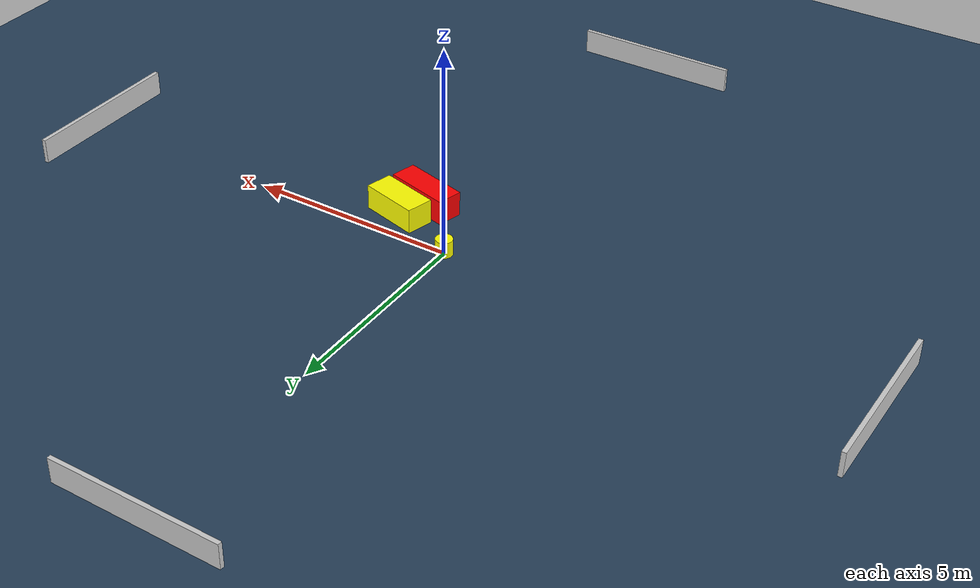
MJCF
<?xml version="1.0" ?>
<mujoco model="generated_environment">
  <option timestep="0.01" integrator="RK4" cone="elliptic"/>
  <default>
    <geom density="1"/>
  </default>
  <asset>
    <texture builtin="gradient" height="3072" name="skybox" rgb1="0.3 0.5 0.7" rgb2="0 0 0" type="skybox" width="512"/>
    <texture builtin="checker" height="300" name="groundplane" rgb1="0.2 0.3 0.4" rgb2="0.1 0.2 0.3" type="2d" width="300"/>
    <material name="groundplane" reflectance="0.2" texrepeat="5 5" texture="groundplane"/>
  </asset>
  <worldbody>
    <light dir="0 0 -1" directional="true" pos="0 0 1.5"/>
    <geom condim="3" friction="0.5 0.005 0.001" material="groundplane" name="floor" pos="0 0 0" size="0 0 0.05" type="plane"/>
    <body name="walls">
      <geom name="wall_1" condim="4" pos="-10.0 0.0 0.3" rgba="0.800000011920929 0.800000011920929 0.800000011920929 1.0" size="0.05 2.0 0.3" type="box"/>
      <geom name="wall_2" condim="4" pos="10.0 0.0 0.3" rgba="0.800000011920929 0.800000011920929 0.800000011920929 1.0" size="0.05 2.0 0.3" type="box"/>
      <geom name="wall_3" condim="4" pos="0.0 -10.0 0.3" rgba="0.800000011920929 0.800000011920929 0.800000011920929 1.0" size="2.0 0.05 0.3" type="box"/>
      <geom name="wall_4" condim="4" pos="0.0 10.0 0.3" rgba="0.800000011920929 0.800000011920929 0.800000011920929 1.0" size="2.0 0.05 0.3" type="box"/>
    </body>
    <body name="robot">
      <joint name="joint_x" type="slide" pos="0 0 0" axis="1 0 0"/>
      <joint name="joint_y" type="slide" pos="0 0 0" axis="0 1 0"/>
      <geom name="robot" type="cylinder" pos="0.0 0.0 0.2" size="0.2 0.2 0.0" mass="5.0" friction="1.0 0.005 0.0001" condim="4" rgba="1.0 1.0 0.0 1.0"/>
    </body>
    <body name="obstacle_1_movable">
      <geom name="obstacle_1_movable" condim="4" pos="1.6893117766085106 -0.7304906303131118 0.3" euler="0 0 345.51209263725764" friction="0.0 0.005 0.001" rgba="1.0 1.0 0.0 1.0" size="0.702374166687102 0.3252335852848185 0.3" type="box" mass="0.1"/>
      <joint type="free"/>
    </body>
    <body name="obstacle_2_static">
      <geom name="obstacle_2_static" condim="4" pos="1.3988566059289438 -1.3912475990064155 0.3" euler="0 0 255.66845689731758" friction="0.0 0.005 0.001" rgba="1.0 0.0 0.0 1.0" size="0.3073398642244982 0.7916905901375415 0.3" type="box"/>
    </body>
  </worldbody>
  <actuator>
    <motor name="actuator_x" joint="joint_x" gear="1" ctrlrange="-1 1"/>
    <motor name="actuator_y" joint="joint_y" gear="1" ctrlrange="-1 1"/>
  </actuator>
</mujoco>
